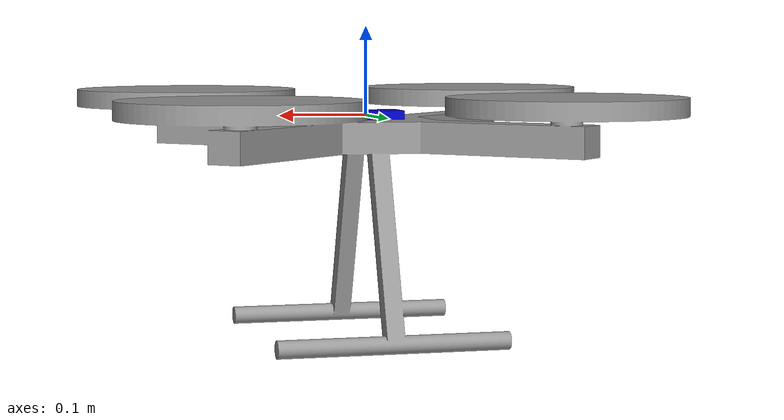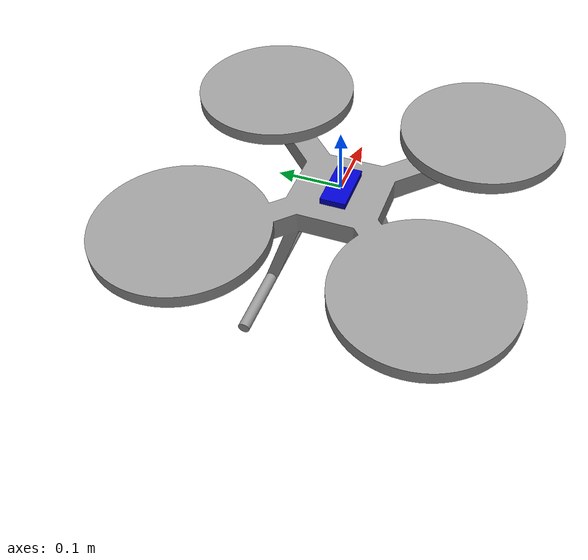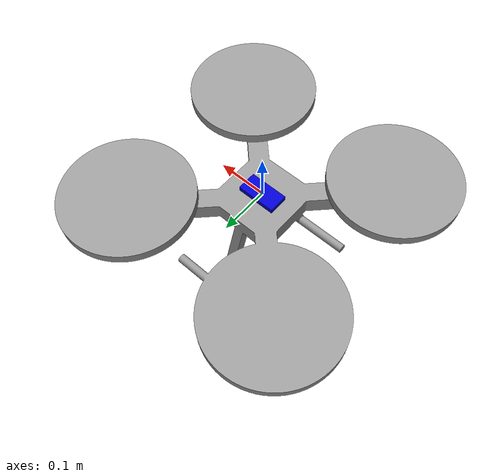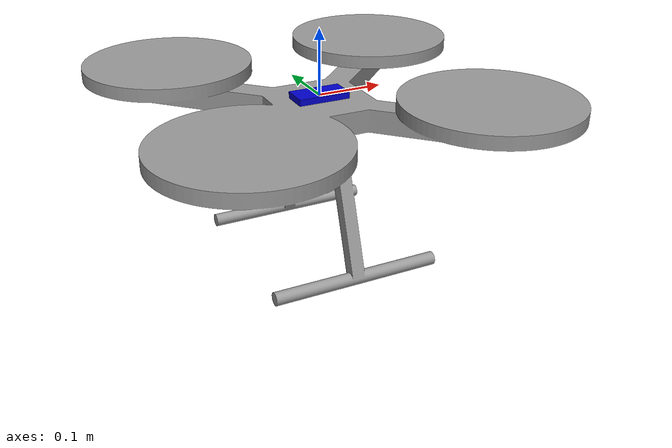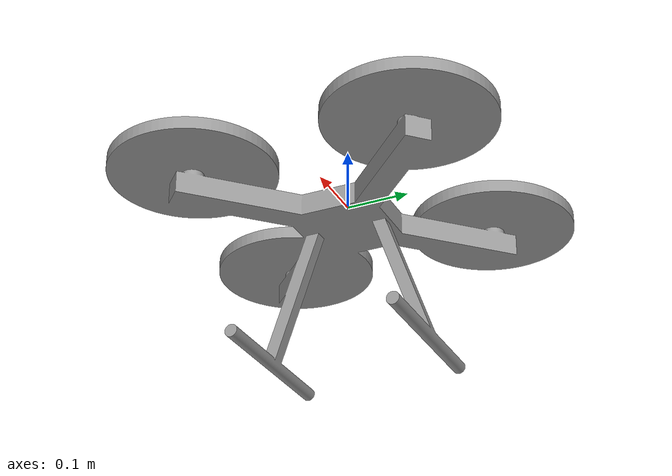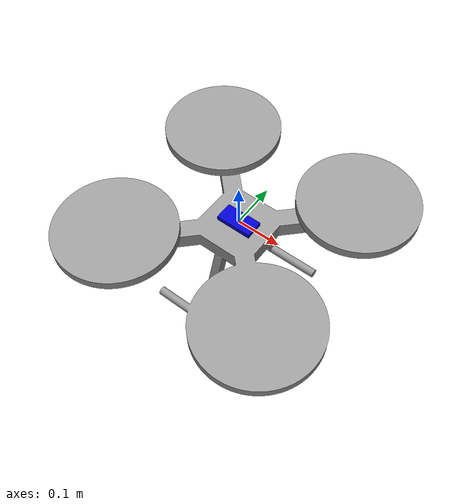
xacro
<?xml version="1.0" ?>
<robot name="X500_V2"
  xmlns:xacro="http://ros.org/wiki/xacro">

  <xacro:arg name="namespace" default=""/>
  <xacro:property name="namespace" value="$(arg namespace)"/>

  <xacro:arg name="color" default="light_gray"/>
  <xacro:property name="robot_color" value="$(arg color)"/>

  <!-- Collision model dimensions (meters) -->
  <xacro:property name="base_collision_radius" value="0.28"/>
  <xacro:property name="base_collision_height" value="0.36"/>

  <xacro:property name="prop_collision_radius" value="0.13"/>
  <xacro:property name="prop_collision_height" value="0.02"/>

  <!-- Propeller layout (meters) -->
  <xacro:property name="prop_center_offset" value="0.25"/>
  <xacro:property name="prop_centroid_z" value="0.27"/>
  <xacro:property name="prop_diag_offset" value="${prop_center_offset / 1.41421356237}"/>

  <!-- Init colour -->
  <material name="black">
      <color rgba="0.0 0.0 0.0 1.0"/>
  </material>

  <material name="dark">
    <color rgba="0.3 0.3 0.3 1.0"/>
  </material>

  <material name="light_gray">
    <color rgba="0.6 0.6 0.6 1.0"/>
  </material>

  <material name="blue">
    <color rgba="0.0 0.0 0.8 1.0"/>
  </material>

  <material name="purple">
    <color rgba="0.3 0.16 0.52 1.0"/>
  </material>

  <!-- IMU_LINK is now the ROOT of the robot's TF tree -->
  <link name="${namespace}imu_link">
    <visual>
      <geometry>
        <box size="0.08 0.04 0.01"/>
      </geometry>
      <material name="blue"/>
    </visual>
  </link>

  <!-- BASE_LINK is CHILD of imu_link -->
  <!-- If IMU is at center of drone, offset is 0,0,0 -->
  <!-- If IMU is offset from center, adjust xyz accordingly -->
  <joint name="${namespace}imu_to_base" type="fixed">
    <parent link="${namespace}imu_link"/>
    <child link="${namespace}base_link"/>
    <!-- Adjust this based on where IMU is relative to drone center -->
    <origin xyz="0.0 0.0 -0.075" rpy="0 0 0"/>
  </joint>

  <link name="${namespace}base_link">
    <visual>
      <origin xyz="0 0 0.035" rpy="0 0 1.5708"/>
      <geometry>
        <mesh filename="package://drone_description/meshes/X500V2_LowPoly.stl" scale="1 1 1"/>
      </geometry>
      <material name="${robot_color}"/>
    </visual>

    <collision name="base_collision_cylinder">
      <origin xyz="0 0 0" rpy="0 0 0"/>
      <geometry>
        <cylinder radius="${base_collision_radius}" length="${base_collision_height}"/>
      </geometry>
    </collision>

    <xacro:property name="prop_z" value="${-base_collision_height/2.0 + prop_centroid_z}"/>

    <collision name="prop_collision_front_left">
      <origin xyz="${prop_diag_offset} ${prop_diag_offset} ${prop_z}" rpy="0 0 0"/>
      <geometry>
        <cylinder radius="${prop_collision_radius}" length="${prop_collision_height}"/>
      </geometry>
    </collision>

    <collision name="prop_collision_front_right">
      <origin xyz="${prop_diag_offset} ${-prop_diag_offset} ${prop_z}" rpy="0 0 0"/>
      <geometry>
        <cylinder radius="${prop_collision_radius}" length="${prop_collision_height}"/>
      </geometry>
    </collision>

    <collision name="prop_collision_back_left">
      <origin xyz="${-prop_diag_offset} ${prop_diag_offset} ${prop_z}" rpy="0 0 0"/>
      <geometry>
        <cylinder radius="${prop_collision_radius}" length="${prop_collision_height}"/>
      </geometry>
    </collision>

    <collision name="prop_collision_back_right">
      <origin xyz="${-prop_diag_offset} ${-prop_diag_offset} ${prop_z}" rpy="0 0 0"/>
      <geometry>
        <cylinder radius="${prop_collision_radius}" length="${prop_collision_height}"/>
      </geometry>
    </collision>

    <inertial>
      <origin xyz="0 0 0" rpy="0 0 0"/>
      <mass value="8.2573504e-01"/>
      <inertia ixx="2.2124416e-03" ixy="-1.2294101e-05" ixz="3.4938785e-05"
               iyy="2.1193702e-03" iyz="-5.0120904e-06" izz="2.0064271e-03" />
    </inertial>
  </link>

  <!-- BASE_FOOTPRINT is CHILD of base_link (ground projection) -->
  <joint name="${namespace}base_to_footprint" type="fixed">
    <parent link="${namespace}base_link"/>
    <child link="${namespace}base_footprint"/>
    <!-- Footprint is projected down to ground -->
    <origin xyz="0.0 0.0 ${-base_collision_height/2.0}" rpy="0 0 0"/>
  </joint>

  <link name="${namespace}base_footprint"/>

</robot>
